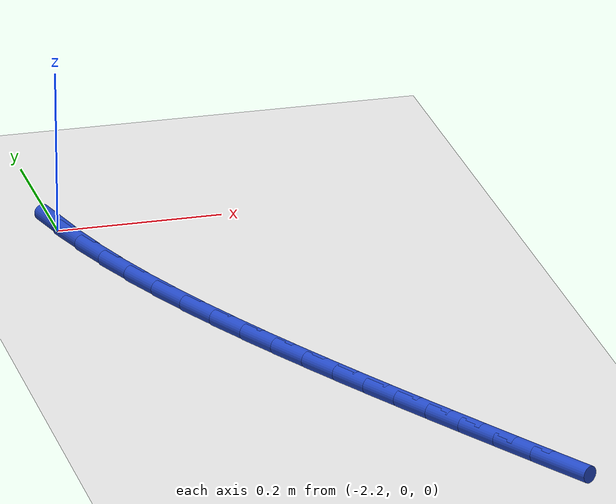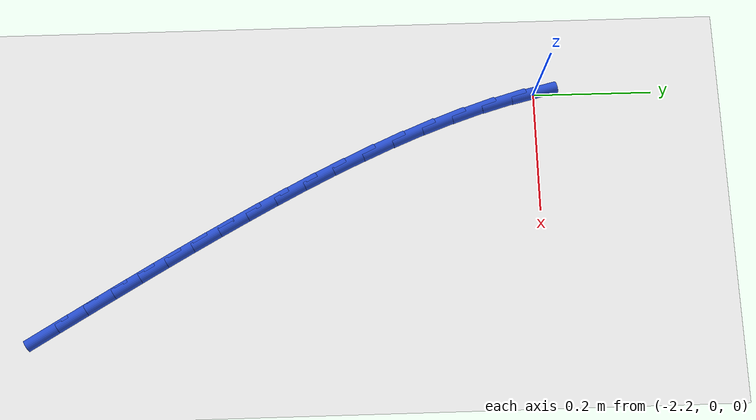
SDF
<sdf version="1.6">
 <world name="default">
  <model name="ground_plane">
   <static>1</static>
   <link name="link">
    <collision name="collision">
     <geometry><plane><normal>0 0 1</normal><size>100 100</size></plane></geometry>
     <surface><friction><ode><mu>100</mu><mu2>50</mu2></ode></friction></surface>
    </collision>
    <visual name="visual">
     <cast_shadows>0</cast_shadows>
     <geometry><plane><normal>0 0 1</normal><size>100 100</size></plane></geometry>
     <material>
      <script><uri>file://media/materials/scripts/gazebo.material</uri><name>Gazebo/WhiteGlow</name></script>
     </material>
    </visual>
   </link>
  </model>
  <model name="line">
   <link name="link_71">
    <pose>-2.2007246004296466 -0.00013982354982769452 0.01 0 1.57 -1.3313947405304896</pose>
    <collision name="collision">
     <geometry><cylinder><radius>0.01</radius><length>0.08</length></cylinder></geometry>
    </collision>
    <visual name="visual">
     <material>
      <script><name>Gazebo/Blue</name><uri>file://media/materials/scripts/gazebo.material</uri></script>
     </material>
     <geometry><cylinder><radius>0.01</radius><length>0.08</length></cylinder></geometry>
    </visual>
   </link>
   <link name="link_72">
    <pose>-2.188221391433408 -0.05136515388172594 0.01 0 1.57 -1.2846099919287695</pose>
    <collision name="collision">
     <geometry><cylinder><radius>0.01</radius><length>0.08</length></cylinder></geometry>
    </collision>
    <visual name="visual">
     <material>
      <script><name>Gazebo/Blue</name><uri>file://media/materials/scripts/gazebo.material</uri></script>
     </material>
     <geometry><cylinder><radius>0.01</radius><length>0.08</length></cylinder></geometry>
    </visual>
   </link>
   <link name="link_73">
    <pose>-2.173117714199025 -0.10269207868417317 0.01 0 1.57 -1.2437041880392112</pose>
    <collision name="collision">
     <geometry><cylinder><radius>0.01</radius><length>0.08</length></cylinder></geometry>
    </collision>
    <visual name="visual">
     <material>
      <script><name>Gazebo/Blue</name><uri>file://media/materials/scripts/gazebo.material</uri></script>
     </material>
     <geometry><cylinder><radius>0.01</radius><length>0.08</length></cylinder></geometry>
    </visual>
   </link>
   <link name="link_74">
    <pose>-2.155730429168374 -0.15393981707879092 0.01 0 1.57 -1.2080147572574191</pose>
    <collision name="collision">
     <geometry><cylinder><radius>0.01</radius><length>0.08</length></cylinder></geometry>
    </collision>
    <visual name="visual">
     <material>
      <script><name>Gazebo/Blue</name><uri>file://media/materials/scripts/gazebo.material</uri></script>
     </material>
     <geometry><cylinder><radius>0.01</radius><length>0.08</length></cylinder></geometry>
    </visual>
   </link>
   <link name="link_75">
    <pose>-2.1363763967833305 -0.20492758818720358 0.01 0 1.57 -1.176972180857771</pose>
    <collision name="collision">
     <geometry><cylinder><radius>0.01</radius><length>0.08</length></cylinder></geometry>
    </collision>
    <visual name="visual">
     <material>
      <script><name>Gazebo/Blue</name><uri>file://media/materials/scripts/gazebo.material</uri></script>
     </material>
     <geometry><cylinder><radius>0.01</radius><length>0.08</length></cylinder></geometry>
    </visual>
   </link>
   <link name="link_76">
    <pose>-2.1153724774857694 -0.2554746111310342 0.01 0 1.57 -1.1501019956360645</pose>
    <collision name="collision">
     <geometry><cylinder><radius>0.01</radius><length>0.08</length></cylinder></geometry>
    </collision>
    <visual name="visual">
     <material>
      <script><name>Gazebo/Blue</name><uri>file://media/materials/scripts/gazebo.material</uri></script>
     </material>
     <geometry><cylinder><radius>0.01</radius><length>0.08</length></cylinder></geometry>
    </visual>
   </link>
   <link name="link_77">
    <pose>-2.0930355317175673 -0.30540010503190645 0.01 0 1.57 -1.1270225048794114</pose>
    <collision name="collision">
     <geometry><cylinder><radius>0.01</radius><length>0.08</length></cylinder></geometry>
    </collision>
    <visual name="visual">
     <material>
      <script><name>Gazebo/Blue</name><uri>file://media/materials/scripts/gazebo.material</uri></script>
     </material>
     <geometry><cylinder><radius>0.01</radius><length>0.08</length></cylinder></geometry>
    </visual>
   </link>
   <link name="link_78">
    <pose>-2.0696824199205985 -0.35452328901144414 0.01 0 1.57 -1.1074417257570337</pose>
    <collision name="collision">
     <geometry><cylinder><radius>0.01</radius><length>0.08</length></cylinder></geometry>
    </collision>
    <visual name="visual">
     <material>
      <script><name>Gazebo/Blue</name><uri>file://media/materials/scripts/gazebo.material</uri></script>
     </material>
     <geometry><cylinder><radius>0.01</radius><length>0.08</length></cylinder></geometry>
    </visual>
   </link>
   <link name="link_79">
    <pose>-2.0456300025367398 -0.40266338219126924 0.01 0 1.57 -1.091155937896218</pose>
    <collision name="collision">
     <geometry><cylinder><radius>0.01</radius><length>0.08</length></cylinder></geometry>
    </collision>
    <visual name="visual">
     <material>
      <script><name>Gazebo/Blue</name><uri>file://media/materials/scripts/gazebo.material</uri></script>
     </material>
     <geometry><cylinder><radius>0.01</radius><length>0.08</length></cylinder></geometry>
    </visual>
   </link>
   <link name="link_80">
    <pose>-2.0211951400078667 -0.4496396036930057 0.01 0 1.57 -1.0780517042798528</pose>
    <collision name="collision">
     <geometry><cylinder><radius>0.01</radius><length>0.08</length></cylinder></geometry>
    </collision>
    <visual name="visual">
     <material>
      <script><name>Gazebo/Blue</name><uri>file://media/materials/scripts/gazebo.material</uri></script>
     </material>
     <geometry><cylinder><radius>0.01</radius><length>0.08</length></cylinder></geometry>
    </visual>
   </link>
   <link name="link_81">
    <pose>-1.9966946927758542 -0.4952711726382769 0.01 0 1.57 -1.0680801910807127</pose>
    <collision name="collision">
     <geometry><cylinder><radius>0.01</radius><length>0.08</length></cylinder></geometry>
    </collision>
    <visual name="visual">
     <material>
      <script><name>Gazebo/Blue</name><uri>file://media/materials/scripts/gazebo.material</uri></script>
     </material>
     <geometry><cylinder><radius>0.01</radius><length>0.08</length></cylinder></geometry>
    </visual>
   </link>
   <link name="link_82">
    <pose>-1.972437533715186 -0.5393883737828018 0.01 0 1.57 -1.0601422458499536</pose>
    <collision name="collision">
     <geometry><cylinder><radius>0.01</radius><length>0.08</length></cylinder></geometry>
    </collision>
    <visual name="visual">
     <material>
      <script><name>Gazebo/Blue</name><uri>file://media/materials/scripts/gazebo.material</uri></script>
     </material>
     <geometry><cylinder><radius>0.01</radius><length>0.08</length></cylinder></geometry>
    </visual>
   </link>
   <link name="link_83">
    <pose>-1.948434237698253 -0.582234741170904 0.01 0 1.57 -1.053047933606514</pose>
    <collision name="collision">
     <geometry><cylinder><radius>0.01</radius><length>0.08</length></cylinder></geometry>
    </collision>
    <visual name="visual">
     <material>
      <script><name>Gazebo/Blue</name><uri>file://media/materials/scripts/gazebo.material</uri></script>
     </material>
     <geometry><cylinder><radius>0.01</radius><length>0.08</length></cylinder></geometry>
    </visual>
   </link>
   <link name="link_84">
    <pose>-1.9243148040831006 -0.624581041880514 0.01 0 1.57 -1.047099280810003</pose>
    <collision name="collision">
     <geometry><cylinder><radius>0.01</radius><length>0.08</length></cylinder></geometry>
    </collision>
    <visual name="visual">
     <material>
      <script><name>Gazebo/Blue</name><uri>file://media/materials/scripts/gazebo.material</uri></script>
     </material>
     <geometry><cylinder><radius>0.01</radius><length>0.08</length></cylinder></geometry>
    </visual>
   </link>
   <link name="link_85">
    <pose>-1.8996844824667185 -0.6672323302495491 0.01 0 1.57 -1.0425766738360382</pose>
    <collision name="collision">
     <geometry><cylinder><radius>0.01</radius><length>0.08</length></cylinder></geometry>
    </collision>
    <visual name="visual">
     <material>
      <script><name>Gazebo/Blue</name><uri>file://media/materials/scripts/gazebo.material</uri></script>
     </material>
     <geometry><cylinder><radius>0.01</radius><length>0.08</length></cylinder></geometry>
    </visual>
   </link>
   <link name="link_86">
    <pose>-1.874148522446092 -0.7109936606159253 0.01 0 1.57 -1.0395951386382902</pose>
    <collision name="collision">
     <geometry><cylinder><radius>0.01</radius><length>0.08</length></cylinder></geometry>
    </collision>
    <visual name="visual">
     <material>
      <script><name>Gazebo/Blue</name><uri>file://media/materials/scripts/gazebo.material</uri></script>
     </material>
     <geometry><cylinder><radius>0.01</radius><length>0.08</length></cylinder></geometry>
    </visual>
   </link>
   <link name="link_87">
    <pose>-1.8473121736182099 -0.7566700873175607 0.01 0 1.57 -1.0380184008043578</pose>
    <collision name="collision">
     <geometry><cylinder><radius>0.01</radius><length>0.08</length></cylinder></geometry>
    </collision>
    <visual name="visual">
     <material>
      <script><name>Gazebo/Blue</name><uri>file://media/materials/scripts/gazebo.material</uri></script>
     </material>
     <geometry><cylinder><radius>0.01</radius><length>0.08</length></cylinder></geometry>
    </visual>
   </link>
   <link name="link_88">
    <pose>-1.8187862443146878 -0.805047433879199 0.01 0 1.57 -1.0342038536566205</pose>
    <collision name="collision">
     <geometry><cylinder><radius>0.01</radius><length>0.08</length></cylinder></geometry>
    </collision>
    <visual name="visual">
     <material>
      <script><name>Gazebo/Blue</name><uri>file://media/materials/scripts/gazebo.material</uri></script>
     </material>
     <geometry><cylinder><radius>0.01</radius><length>0.08</length></cylinder></geometry>
    </visual>
   </link>
  </model>
 </world>
</sdf>
